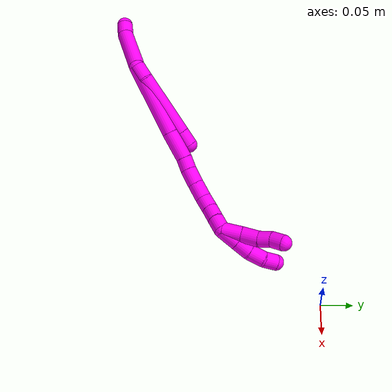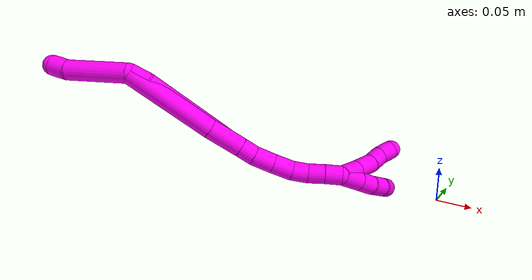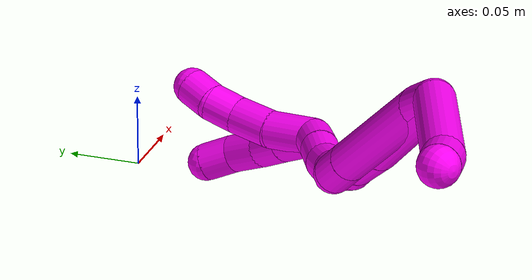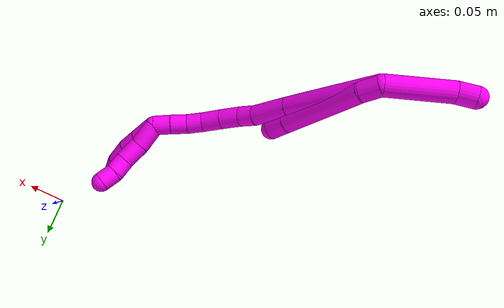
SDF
<sdf version="1.7">
 <world name="default">
  <model name="10">
   <static>0</static>
   <link name="10">
    <collision name="collision-cylinder-e_1_2_8">
     <pose>0.006046 -0.000489 -0.010186 3.09361 0.535124 2.96699</pose>
     <geometry><cylinder><radius>0.0125</radius><length>0.023711</length></cylinder></geometry>
     <surface>
      <friction><ode><mu>1.16</mu><mu2>1.16</mu2><slip1>0</slip1><slip2>0</slip2></ode></friction>
      <contact><ode><kp>1e+06</kp><kd>1</kd><max_vel>0</max_vel><min_depth>0.001</min_depth></ode></contact>
     </surface>
    </collision>
    <visual name="visual-cylinder-e_1_2_8">
     <pose>0.006046 -0.000489 -0.010186 3.09361 0.535124 2.96699</pose>
     <geometry><cylinder><radius>0.0125</radius><length>0.023711</length></cylinder></geometry>
     <material><ambient>1 0 0.964706 1</ambient></material>
    </visual>
    <collision name="collision-cylinder-e_2_8_9">
     <pose>0.041257 -0.011246 -0.060897 2.89344 0.609156 2.38623</pose>
     <geometry><cylinder><radius>0.0125</radius><length>0.101946</length></cylinder></geometry>
     <surface>
      <friction><ode><mu>1.16</mu><mu2>1.16</mu2><slip1>0</slip1><slip2>0</slip2></ode></friction>
      <contact><ode><kp>1e+06</kp><kd>1</kd><max_vel>0</max_vel><min_depth>0.001</min_depth></ode></contact>
     </surface>
    </collision>
    <visual name="visual-cylinder-e_2_8_9">
     <pose>0.041257 -0.011246 -0.060897 2.89344 0.609156 2.38623</pose>
     <geometry><cylinder><radius>0.0125</radius><length>0.101946</length></cylinder></geometry>
     <material><ambient>1 0 0.964706 1</ambient></material>
    </visual>
    <collision name="collision-cylinder-e_3_9_6">
     <pose>0.077435 -0.024067 -0.111036 2.882 0.613987 2.3604</pose>
     <geometry><cylinder><radius>0.0125</radius><length>0.024343</length></cylinder></geometry>
     <surface>
      <friction><ode><mu>1.16</mu><mu2>1.16</mu2><slip1>0</slip1><slip2>0</slip2></ode></friction>
      <contact><ode><kp>1e+06</kp><kd>1</kd><max_vel>0</max_vel><min_depth>0.001</min_depth></ode></contact>
     </surface>
    </collision>
    <visual name="visual-cylinder-e_3_9_6">
     <pose>0.077435 -0.024067 -0.111036 2.882 0.613987 2.3604</pose>
     <geometry><cylinder><radius>0.0125</radius><length>0.024343</length></cylinder></geometry>
     <material><ambient>1 0 0.964706 1</ambient></material>
    </visual>
    <collision name="collision-cylinder-e_1_2_10">
     <pose>-0.011165 -0.021345 0.030967 0.603503 -0.288562 -0.090384</pose>
     <geometry><cylinder><radius>0.0125</radius><length>0.078466</length></cylinder></geometry>
     <surface>
      <friction><ode><mu>1.16</mu><mu2>1.16</mu2><slip1>0</slip1><slip2>0</slip2></ode></friction>
      <contact><ode><kp>1e+06</kp><kd>1</kd><max_vel>0</max_vel><min_depth>0.001</min_depth></ode></contact>
     </surface>
    </collision>
    <visual name="visual-cylinder-e_1_2_10">
     <pose>-0.011165 -0.021345 0.030967 0.603503 -0.288562 -0.090384</pose>
     <geometry><cylinder><radius>0.0125</radius><length>0.078466</length></cylinder></geometry>
     <material><ambient>1 0 0.964706 1</ambient></material>
    </visual>
    <collision name="collision-cylinder-e_2_10_5">
     <pose>-0.027816 -0.048617 0.069055 0.694081 -0.534679 -0.19748</pose>
     <geometry><cylinder><radius>0.0125</radius><length>0.021534</length></cylinder></geometry>
     <surface>
      <friction><ode><mu>1.16</mu><mu2>1.16</mu2><slip1>0</slip1><slip2>0</slip2></ode></friction>
      <contact><ode><kp>1e+06</kp><kd>1</kd><max_vel>0</max_vel><min_depth>0.001</min_depth></ode></contact>
     </surface>
    </collision>
    <visual name="visual-cylinder-e_2_10_5">
     <pose>-0.027816 -0.048617 0.069055 0.694081 -0.534679 -0.19748</pose>
     <geometry><cylinder><radius>0.0125</radius><length>0.021534</length></cylinder></geometry>
     <material><ambient>1 0 0.964706 1</ambient></material>
    </visual>
    <collision name="collision-cylinder-e_1_2_11">
     <pose>0.036887 -0.002938 -0.045547 3.07717 0.679716 2.95982</pose>
     <geometry><cylinder><radius>0.0125</radius><length>0.117367</length></cylinder></geometry>
     <surface>
      <friction><ode><mu>1.16</mu><mu2>1.16</mu2><slip1>0</slip1><slip2>0</slip2></ode></friction>
      <contact><ode><kp>1e+06</kp><kd>1</kd><max_vel>0</max_vel><min_depth>0.001</min_depth></ode></contact>
     </surface>
    </collision>
    <visual name="visual-cylinder-e_1_2_11">
     <pose>0.036887 -0.002938 -0.045547 3.07717 0.679716 2.95982</pose>
     <geometry><cylinder><radius>0.0125</radius><length>0.117367</length></cylinder></geometry>
     <material><ambient>1 0 0.964706 1</ambient></material>
    </visual>
    <collision name="collision-cylinder-e_2_11_12">
     <pose>0.087198 -0.006777 -0.109625 3.09304 0.626332 2.9919</pose>
     <geometry><cylinder><radius>0.0125</radius><length>0.045801</length></cylinder></geometry>
     <surface>
      <friction><ode><mu>1.16</mu><mu2>1.16</mu2><slip1>0</slip1><slip2>0</slip2></ode></friction>
      <contact><ode><kp>1e+06</kp><kd>1</kd><max_vel>0</max_vel><min_depth>0.001</min_depth></ode></contact>
     </surface>
    </collision>
    <visual name="visual-cylinder-e_2_11_12">
     <pose>0.087198 -0.006777 -0.109625 3.09304 0.626332 2.9919</pose>
     <geometry><cylinder><radius>0.0125</radius><length>0.045801</length></cylinder></geometry>
     <material><ambient>1 0 0.964706 1</ambient></material>
    </visual>
    <collision name="collision-cylinder-e_3_12_13">
     <pose>0.107128 -0.00668 -0.135815 -3.01197 0.70013 -2.78974</pose>
     <geometry><cylinder><radius>0.0125</radius><length>0.020198</length></cylinder></geometry>
     <surface>
      <friction><ode><mu>1.16</mu><mu2>1.16</mu2><slip1>0</slip1><slip2>0</slip2></ode></friction>
      <contact><ode><kp>1e+06</kp><kd>1</kd><max_vel>0</max_vel><min_depth>0.001</min_depth></ode></contact>
     </surface>
    </collision>
    <visual name="visual-cylinder-e_3_12_13">
     <pose>0.107128 -0.00668 -0.135815 -3.01197 0.70013 -2.78974</pose>
     <geometry><cylinder><radius>0.0125</radius><length>0.020198</length></cylinder></geometry>
     <material><ambient>1 0 0.964706 1</ambient></material>
    </visual>
    <collision name="collision-cylinder-e_4_13_14">
     <pose>0.120365 -0.003762 -0.1545 -2.96923 0.541395 -2.53797</pose>
     <geometry><cylinder><radius>0.0125</radius><length>0.026119</length></cylinder></geometry>
     <surface>
      <friction><ode><mu>1.16</mu><mu2>1.16</mu2><slip1>0</slip1><slip2>0</slip2></ode></friction>
      <contact><ode><kp>1e+06</kp><kd>1</kd><max_vel>0</max_vel><min_depth>0.001</min_depth></ode></contact>
     </surface>
    </collision>
    <visual name="visual-cylinder-e_4_13_14">
     <pose>0.120365 -0.003762 -0.1545 -2.96923 0.541395 -2.53797</pose>
     <geometry><cylinder><radius>0.0125</radius><length>0.026119</length></cylinder></geometry>
     <material><ambient>1 0 0.964706 1</ambient></material>
    </visual>
    <collision name="collision-cylinder-e_5_14_15">
     <pose>0.133344 0.000115 -0.176676 -2.96786 0.504379 -2.48976</pose>
     <geometry><cylinder><radius>0.0125</radius><length>0.025862</length></cylinder></geometry>
     <surface>
      <friction><ode><mu>1.16</mu><mu2>1.16</mu2><slip1>0</slip1><slip2>0</slip2></ode></friction>
      <contact><ode><kp>1e+06</kp><kd>1</kd><max_vel>0</max_vel><min_depth>0.001</min_depth></ode></contact>
     </surface>
    </collision>
    <visual name="visual-cylinder-e_5_14_15">
     <pose>0.133344 0.000115 -0.176676 -2.96786 0.504379 -2.48976</pose>
     <geometry><cylinder><radius>0.0125</radius><length>0.025862</length></cylinder></geometry>
     <material><ambient>1 0 0.964706 1</ambient></material>
    </visual>
    <collision name="collision-cylinder-e_6_15_16">
     <pose>0.143166 0.005185 -0.197315 -2.82452 0.343552 -1.65238</pose>
     <geometry><cylinder><radius>0.0125</radius><length>0.021211</length></cylinder></geometry>
     <surface>
      <friction><ode><mu>1.16</mu><mu2>1.16</mu2><slip1>0</slip1><slip2>0</slip2></ode></friction>
      <contact><ode><kp>1e+06</kp><kd>1</kd><max_vel>0</max_vel><min_depth>0.001</min_depth></ode></contact>
     </surface>
    </collision>
    <visual name="visual-cylinder-e_6_15_16">
     <pose>0.143166 0.005185 -0.197315 -2.82452 0.343552 -1.65238</pose>
     <geometry><cylinder><radius>0.0125</radius><length>0.021211</length></cylinder></geometry>
     <material><ambient>1 0 0.964706 1</ambient></material>
    </visual>
    <collision name="collision-cylinder-e_7_16_17">
     <pose>0.14925 0.013216 -0.216122 -2.65606 0.233975 -0.88617</pose>
     <geometry><cylinder><radius>0.0125</radius><length>0.021664</length></cylinder></geometry>
     <surface>
      <friction><ode><mu>1.16</mu><mu2>1.16</mu2><slip1>0</slip1><slip2>0</slip2></ode></friction>
      <contact><ode><kp>1e+06</kp><kd>1</kd><max_vel>0</max_vel><min_depth>0.001</min_depth></ode></contact>
     </surface>
    </collision>
    <visual name="visual-cylinder-e_7_16_17">
     <pose>0.14925 0.013216 -0.216122 -2.65606 0.233975 -0.88617</pose>
     <geometry><cylinder><radius>0.0125</radius><length>0.021664</length></cylinder></geometry>
     <material><ambient>1 0 0.964706 1</ambient></material>
    </visual>
    <collision name="collision-cylinder-e_8_17_1">
     <pose>0.154706 0.022491 -0.234975 -2.71284 0.273887 -1.12859</pose>
     <geometry><cylinder><radius>0.0125</radius><length>0.021778</length></cylinder></geometry>
     <surface>
      <friction><ode><mu>1.16</mu><mu2>1.16</mu2><slip1>0</slip1><slip2>0</slip2></ode></friction>
      <contact><ode><kp>1e+06</kp><kd>1</kd><max_vel>0</max_vel><min_depth>0.001</min_depth></ode></contact>
     </surface>
    </collision>
    <visual name="visual-cylinder-e_8_17_1">
     <pose>0.154706 0.022491 -0.234975 -2.71284 0.273887 -1.12859</pose>
     <geometry><cylinder><radius>0.0125</radius><length>0.021778</length></cylinder></geometry>
     <material><ambient>1 0 0.964706 1</ambient></material>
    </visual>
    <collision name="collision-cylinder-e_1_1_18">
     <pose>0.161999 0.02305 -0.258339 2.87351 0.294309 1.66524</pose>
     <geometry><cylinder><radius>0.0125</radius><length>0.029974</length></cylinder></geometry>
     <surface>
      <friction><ode><mu>1.16</mu><mu2>1.16</mu2><slip1>0</slip1><slip2>0</slip2></ode></friction>
      <contact><ode><kp>1e+06</kp><kd>1</kd><max_vel>0</max_vel><min_depth>0.001</min_depth></ode></contact>
     </surface>
    </collision>
    <visual name="visual-cylinder-e_1_1_18">
     <pose>0.161999 0.02305 -0.258339 2.87351 0.294309 1.66524</pose>
     <geometry><cylinder><radius>0.0125</radius><length>0.029974</length></cylinder></geometry>
     <material><ambient>1 0 0.964706 1</ambient></material>
    </visual>
    <collision name="collision-cylinder-e_2_18_19">
     <pose>0.169818 0.016046 -0.283061 2.8554 0.296737 1.60748</pose>
     <geometry><cylinder><radius>0.0125</radius><length>0.023746</length></cylinder></geometry>
     <surface>
      <friction><ode><mu>1.16</mu><mu2>1.16</mu2><slip1>0</slip1><slip2>0</slip2></ode></friction>
      <contact><ode><kp>1e+06</kp><kd>1</kd><max_vel>0</max_vel><min_depth>0.001</min_depth></ode></contact>
     </surface>
    </collision>
    <visual name="visual-cylinder-e_2_18_19">
     <pose>0.169818 0.016046 -0.283061 2.8554 0.296737 1.60748</pose>
     <geometry><cylinder><radius>0.0125</radius><length>0.023746</length></cylinder></geometry>
     <material><ambient>1 0 0.964706 1</ambient></material>
    </visual>
    <collision name="collision-cylinder-e_3_19_20">
     <pose>0.175013 0.007924 -0.30527 2.73177 0.138817 0.645613</pose>
     <geometry><cylinder><radius>0.0125</radius><length>0.024917</length></cylinder></geometry>
     <surface>
      <friction><ode><mu>1.16</mu><mu2>1.16</mu2><slip1>0</slip1><slip2>0</slip2></ode></friction>
      <contact><ode><kp>1e+06</kp><kd>1</kd><max_vel>0</max_vel><min_depth>0.001</min_depth></ode></contact>
     </surface>
    </collision>
    <visual name="visual-cylinder-e_3_19_20">
     <pose>0.175013 0.007924 -0.30527 2.73177 0.138817 0.645613</pose>
     <geometry><cylinder><radius>0.0125</radius><length>0.024917</length></cylinder></geometry>
     <material><ambient>1 0 0.964706 1</ambient></material>
    </visual>
    <collision name="collision-cylinder-e_4_20_4">
     <pose>0.177082 -0.003693 -0.324899 2.46303 0.032286 0.091425</pose>
     <geometry><cylinder><radius>0.0125</radius><length>0.021363</length></cylinder></geometry>
     <surface>
      <friction><ode><mu>1.16</mu><mu2>1.16</mu2><slip1>0</slip1><slip2>0</slip2></ode></friction>
      <contact><ode><kp>1e+06</kp><kd>1</kd><max_vel>0</max_vel><min_depth>0.001</min_depth></ode></contact>
     </surface>
    </collision>
    <visual name="visual-cylinder-e_4_20_4">
     <pose>0.177082 -0.003693 -0.324899 2.46303 0.032286 0.091425</pose>
     <geometry><cylinder><radius>0.0125</radius><length>0.021363</length></cylinder></geometry>
     <material><ambient>1 0 0.964706 1</ambient></material>
    </visual>
    <collision name="collision-cylinder-e_1_1_21">
     <pose>0.154588 0.022116 -0.259189 2.8297 -0.196058 -1.11793</pose>
     <geometry><cylinder><radius>0.0125</radius><length>0.031451</length></cylinder></geometry>
     <surface>
      <friction><ode><mu>1.16</mu><mu2>1.16</mu2><slip1>0</slip1><slip2>0</slip2></ode></friction>
      <contact><ode><kp>1e+06</kp><kd>1</kd><max_vel>0</max_vel><min_depth>0.001</min_depth></ode></contact>
     </surface>
    </collision>
    <visual name="visual-cylinder-e_1_1_21">
     <pose>0.154588 0.022116 -0.259189 2.8297 -0.196058 -1.11793</pose>
     <geometry><cylinder><radius>0.0125</radius><length>0.031451</length></cylinder></geometry>
     <material><ambient>1 0 0.964706 1</ambient></material>
    </visual>
    <collision name="collision-cylinder-e_2_21_22">
     <pose>0.14815 0.015975 -0.287227 3.03658 -0.246118 -2.33799</pose>
     <geometry><cylinder><radius>0.0125</radius><length>0.027699</length></cylinder></geometry>
     <surface>
      <friction><ode><mu>1.16</mu><mu2>1.16</mu2><slip1>0</slip1><slip2>0</slip2></ode></friction>
      <contact><ode><kp>1e+06</kp><kd>1</kd><max_vel>0</max_vel><min_depth>0.001</min_depth></ode></contact>
     </surface>
    </collision>
    <visual name="visual-cylinder-e_2_21_22">
     <pose>0.14815 0.015975 -0.287227 3.03658 -0.246118 -2.33799</pose>
     <geometry><cylinder><radius>0.0125</radius><length>0.027699</length></cylinder></geometry>
     <material><ambient>1 0 0.964706 1</ambient></material>
    </visual>
    <collision name="collision-cylinder-e_3_22_23">
     <pose>0.140113 0.013211 -0.309701 2.99391 -0.468448 -2.54032</pose>
     <geometry><cylinder><radius>0.0125</radius><length>0.020656</length></cylinder></geometry>
     <surface>
      <friction><ode><mu>1.16</mu><mu2>1.16</mu2><slip1>0</slip1><slip2>0</slip2></ode></friction>
      <contact><ode><kp>1e+06</kp><kd>1</kd><max_vel>0</max_vel><min_depth>0.001</min_depth></ode></contact>
     </surface>
    </collision>
    <visual name="visual-cylinder-e_3_22_23">
     <pose>0.140113 0.013211 -0.309701 2.99391 -0.468448 -2.54032</pose>
     <geometry><cylinder><radius>0.0125</radius><length>0.020656</length></cylinder></geometry>
     <material><ambient>1 0 0.964706 1</ambient></material>
    </visual>
    <collision name="collision-cylinder-e_4_23_3">
     <pose>0.132414 0.012947 -0.328383 -3.02794 -0.305381 2.43345</pose>
     <geometry><cylinder><radius>0.0125</radius><length>0.020193</length></cylinder></geometry>
     <surface>
      <friction><ode><mu>1.16</mu><mu2>1.16</mu2><slip1>0</slip1><slip2>0</slip2></ode></friction>
      <contact><ode><kp>1e+06</kp><kd>1</kd><max_vel>0</max_vel><min_depth>0.001</min_depth></ode></contact>
     </surface>
    </collision>
    <visual name="visual-cylinder-e_4_23_3">
     <pose>0.132414 0.012947 -0.328383 -3.02794 -0.305381 2.43345</pose>
     <geometry><cylinder><radius>0.0125</radius><length>0.020193</length></cylinder></geometry>
     <material><ambient>1 0 0.964706 1</ambient></material>
    </visual>
    <collision name="collision-sphere-3">
     <pose>0.129378 0.014039 -0.337951 0 -0 0</pose>
     <geometry><sphere><radius>0.0125</radius></sphere></geometry>
     <surface>
      <friction><ode><mu>1.16</mu><mu2>1.16</mu2><slip1>0</slip1><slip2>0</slip2></ode></friction>
      <contact><ode><kp>1e+06</kp><kd>1</kd><max_vel>0</max_vel><min_depth>0.001</min_depth></ode></contact>
     </surface>
    </collision>
    <visual name="visual-sphere-3">
     <pose>0.129378 0.014039 -0.337951 0 -0 0</pose>
     <geometry><sphere><radius>0.0125</radius></sphere></geometry>
     <material><ambient>1 0 0.964706 1</ambient></material>
    </visual>
    <collision name="collision-sphere-23">
     <pose>0.135449 0.011855 -0.318816 0 -0 0</pose>
     <geometry><sphere><radius>0.0125</radius></sphere></geometry>
     <surface>
      <friction><ode><mu>1.16</mu><mu2>1.16</mu2><slip1>0</slip1><slip2>0</slip2></ode></friction>
      <contact><ode><kp>1e+06</kp><kd>1</kd><max_vel>0</max_vel><min_depth>0.001</min_depth></ode></contact>
     </surface>
    </collision>
    <visual name="visual-sphere-23">
     <pose>0.135449 0.011855 -0.318816 0 -0 0</pose>
     <geometry><sphere><radius>0.0125</radius></sphere></geometry>
     <material><ambient>1 0 0.964706 1</ambient></material>
    </visual>
    <collision name="collision-sphere-22">
     <pose>0.144776 0.014567 -0.300586 0 -0 0</pose>
     <geometry><sphere><radius>0.0125</radius></sphere></geometry>
     <surface>
      <friction><ode><mu>1.16</mu><mu2>1.16</mu2><slip1>0</slip1><slip2>0</slip2></ode></friction>
      <contact><ode><kp>1e+06</kp><kd>1</kd><max_vel>0</max_vel><min_depth>0.001</min_depth></ode></contact>
     </surface>
    </collision>
    <visual name="visual-sphere-22">
     <pose>0.144776 0.014567 -0.300586 0 -0 0</pose>
     <geometry><sphere><radius>0.0125</radius></sphere></geometry>
     <material><ambient>1 0 0.964706 1</ambient></material>
    </visual>
    <collision name="collision-sphere-21">
     <pose>0.151524 0.017383 -0.273869 0 -0 0</pose>
     <geometry><sphere><radius>0.0125</radius></sphere></geometry>
     <surface>
      <friction><ode><mu>1.16</mu><mu2>1.16</mu2><slip1>0</slip1><slip2>0</slip2></ode></friction>
      <contact><ode><kp>1e+06</kp><kd>1</kd><max_vel>0</max_vel><min_depth>0.001</min_depth></ode></contact>
     </surface>
    </collision>
    <visual name="visual-sphere-21">
     <pose>0.151524 0.017383 -0.273869 0 -0 0</pose>
     <geometry><sphere><radius>0.0125</radius></sphere></geometry>
     <material><ambient>1 0 0.964706 1</ambient></material>
    </visual>
    <collision name="collision-sphere-4">
     <pose>0.177427 -0.010394 -0.33321 0 -0 0</pose>
     <geometry><sphere><radius>0.0125</radius></sphere></geometry>
     <surface>
      <friction><ode><mu>1.16</mu><mu2>1.16</mu2><slip1>0</slip1><slip2>0</slip2></ode></friction>
      <contact><ode><kp>1e+06</kp><kd>1</kd><max_vel>0</max_vel><min_depth>0.001</min_depth></ode></contact>
     </surface>
    </collision>
    <visual name="visual-sphere-4">
     <pose>0.177427 -0.010394 -0.33321 0 -0 0</pose>
     <geometry><sphere><radius>0.0125</radius></sphere></geometry>
     <material><ambient>1 0 0.964706 1</ambient></material>
    </visual>
    <collision name="collision-sphere-20">
     <pose>0.176737 0.003008 -0.316588 0 -0 0</pose>
     <geometry><sphere><radius>0.0125</radius></sphere></geometry>
     <surface>
      <friction><ode><mu>1.16</mu><mu2>1.16</mu2><slip1>0</slip1><slip2>0</slip2></ode></friction>
      <contact><ode><kp>1e+06</kp><kd>1</kd><max_vel>0</max_vel><min_depth>0.001</min_depth></ode></contact>
     </surface>
    </collision>
    <visual name="visual-sphere-20">
     <pose>0.176737 0.003008 -0.316588 0 -0 0</pose>
     <geometry><sphere><radius>0.0125</radius></sphere></geometry>
     <material><ambient>1 0 0.964706 1</ambient></material>
    </visual>
    <collision name="collision-sphere-5">
     <pose>-0.033302 -0.054543 0.076176 0 -0 0</pose>
     <geometry><sphere><radius>0.0125</radius></sphere></geometry>
     <surface>
      <friction><ode><mu>1.16</mu><mu2>1.16</mu2><slip1>0</slip1><slip2>0</slip2></ode></friction>
      <contact><ode><kp>1e+06</kp><kd>1</kd><max_vel>0</max_vel><min_depth>0.001</min_depth></ode></contact>
     </surface>
    </collision>
    <visual name="visual-sphere-5">
     <pose>-0.033302 -0.054543 0.076176 0 -0 0</pose>
     <geometry><sphere><radius>0.0125</radius></sphere></geometry>
     <material><ambient>1 0 0.964706 1</ambient></material>
    </visual>
    <collision name="collision-sphere-10">
     <pose>-0.022329 -0.042691 0.061934 0 -0 0</pose>
     <geometry><sphere><radius>0.0125</radius></sphere></geometry>
     <surface>
      <friction><ode><mu>1.16</mu><mu2>1.16</mu2><slip1>0</slip1><slip2>0</slip2></ode></friction>
      <contact><ode><kp>1e+06</kp><kd>1</kd><max_vel>0</max_vel><min_depth>0.001</min_depth></ode></contact>
     </surface>
    </collision>
    <visual name="visual-sphere-10">
     <pose>-0.022329 -0.042691 0.061934 0 -0 0</pose>
     <geometry><sphere><radius>0.0125</radius></sphere></geometry>
     <material><ambient>1 0 0.964706 1</ambient></material>
    </visual>
    <collision name="collision-sphere-6">
     <pose>0.084447 -0.026621 -0.120651 0 -0 0</pose>
     <geometry><sphere><radius>0.0125</radius></sphere></geometry>
     <surface>
      <friction><ode><mu>1.16</mu><mu2>1.16</mu2><slip1>0</slip1><slip2>0</slip2></ode></friction>
      <contact><ode><kp>1e+06</kp><kd>1</kd><max_vel>0</max_vel><min_depth>0.001</min_depth></ode></contact>
     </surface>
    </collision>
    <visual name="visual-sphere-6">
     <pose>0.084447 -0.026621 -0.120651 0 -0 0</pose>
     <geometry><sphere><radius>0.0125</radius></sphere></geometry>
     <material><ambient>1 0 0.964706 1</ambient></material>
    </visual>
    <collision name="collision-sphere-9">
     <pose>0.070422 -0.021513 -0.101421 0 -0 0</pose>
     <geometry><sphere><radius>0.0125</radius></sphere></geometry>
     <surface>
      <friction><ode><mu>1.16</mu><mu2>1.16</mu2><slip1>0</slip1><slip2>0</slip2></ode></friction>
      <contact><ode><kp>1e+06</kp><kd>1</kd><max_vel>0</max_vel><min_depth>0.001</min_depth></ode></contact>
     </surface>
    </collision>
    <visual name="visual-sphere-9">
     <pose>0.070422 -0.021513 -0.101421 0 -0 0</pose>
     <geometry><sphere><radius>0.0125</radius></sphere></geometry>
     <material><ambient>1 0 0.964706 1</ambient></material>
    </visual>
    <collision name="collision-sphere-2">
     <geometry><sphere><radius>0.0125</radius></sphere></geometry>
     <surface>
      <friction><ode><mu>1.16</mu><mu2>1.16</mu2><slip1>0</slip1><slip2>0</slip2></ode></friction>
      <contact><ode><kp>1e+06</kp><kd>1</kd><max_vel>0</max_vel><min_depth>0.001</min_depth></ode></contact>
     </surface>
    </collision>
    <visual name="visual-sphere-2">
     <geometry><sphere><radius>0.0125</radius></sphere></geometry>
     <material><ambient>1 0 0.964706 1</ambient></material>
    </visual>
    <collision name="collision-sphere-19">
     <pose>0.173289 0.012841 -0.293953 0 -0 0</pose>
     <geometry><sphere><radius>0.0125</radius></sphere></geometry>
     <surface>
      <friction><ode><mu>1.16</mu><mu2>1.16</mu2><slip1>0</slip1><slip2>0</slip2></ode></friction>
      <contact><ode><kp>1e+06</kp><kd>1</kd><max_vel>0</max_vel><min_depth>0.001</min_depth></ode></contact>
     </surface>
    </collision>
    <visual name="visual-sphere-19">
     <pose>0.173289 0.012841 -0.293953 0 -0 0</pose>
     <geometry><sphere><radius>0.0125</radius></sphere></geometry>
     <material><ambient>1 0 0.964706 1</ambient></material>
    </visual>
    <collision name="collision-sphere-8">
     <pose>0.012091 -0.000978 -0.020373 0 -0 0</pose>
     <geometry><sphere><radius>0.0125</radius></sphere></geometry>
     <surface>
      <friction><ode><mu>1.16</mu><mu2>1.16</mu2><slip1>0</slip1><slip2>0</slip2></ode></friction>
      <contact><ode><kp>1e+06</kp><kd>1</kd><max_vel>0</max_vel><min_depth>0.001</min_depth></ode></contact>
     </surface>
    </collision>
    <visual name="visual-sphere-8">
     <pose>0.012091 -0.000978 -0.020373 0 -0 0</pose>
     <geometry><sphere><radius>0.0125</radius></sphere></geometry>
     <material><ambient>1 0 0.964706 1</ambient></material>
    </visual>
    <collision name="collision-sphere-11">
     <pose>0.073774 -0.005877 -0.091093 0 -0 0</pose>
     <geometry><sphere><radius>0.0125</radius></sphere></geometry>
     <surface>
      <friction><ode><mu>1.16</mu><mu2>1.16</mu2><slip1>0</slip1><slip2>0</slip2></ode></friction>
      <contact><ode><kp>1e+06</kp><kd>1</kd><max_vel>0</max_vel><min_depth>0.001</min_depth></ode></contact>
     </surface>
    </collision>
    <visual name="visual-sphere-11">
     <pose>0.073774 -0.005877 -0.091093 0 -0 0</pose>
     <geometry><sphere><radius>0.0125</radius></sphere></geometry>
     <material><ambient>1 0 0.964706 1</ambient></material>
    </visual>
    <collision name="collision-sphere-12">
     <pose>0.100621 -0.007678 -0.128157 0 -0 0</pose>
     <geometry><sphere><radius>0.0125</radius></sphere></geometry>
     <surface>
      <friction><ode><mu>1.16</mu><mu2>1.16</mu2><slip1>0</slip1><slip2>0</slip2></ode></friction>
      <contact><ode><kp>1e+06</kp><kd>1</kd><max_vel>0</max_vel><min_depth>0.001</min_depth></ode></contact>
     </surface>
    </collision>
    <visual name="visual-sphere-12">
     <pose>0.100621 -0.007678 -0.128157 0 -0 0</pose>
     <geometry><sphere><radius>0.0125</radius></sphere></geometry>
     <material><ambient>1 0 0.964706 1</ambient></material>
    </visual>
    <collision name="collision-sphere-13">
     <pose>0.113635 -0.005681 -0.143474 0 -0 0</pose>
     <geometry><sphere><radius>0.0125</radius></sphere></geometry>
     <surface>
      <friction><ode><mu>1.16</mu><mu2>1.16</mu2><slip1>0</slip1><slip2>0</slip2></ode></friction>
      <contact><ode><kp>1e+06</kp><kd>1</kd><max_vel>0</max_vel><min_depth>0.001</min_depth></ode></contact>
     </surface>
    </collision>
    <visual name="visual-sphere-13">
     <pose>0.113635 -0.005681 -0.143474 0 -0 0</pose>
     <geometry><sphere><radius>0.0125</radius></sphere></geometry>
     <material><ambient>1 0 0.964706 1</ambient></material>
    </visual>
    <collision name="collision-sphere-14">
     <pose>0.127095 -0.001842 -0.165526 0 -0 0</pose>
     <geometry><sphere><radius>0.0125</radius></sphere></geometry>
     <surface>
      <friction><ode><mu>1.16</mu><mu2>1.16</mu2><slip1>0</slip1><slip2>0</slip2></ode></friction>
      <contact><ode><kp>1e+06</kp><kd>1</kd><max_vel>0</max_vel><min_depth>0.001</min_depth></ode></contact>
     </surface>
    </collision>
    <visual name="visual-sphere-14">
     <pose>0.127095 -0.001842 -0.165526 0 -0 0</pose>
     <geometry><sphere><radius>0.0125</radius></sphere></geometry>
     <material><ambient>1 0 0.964706 1</ambient></material>
    </visual>
    <collision name="collision-sphere-15">
     <pose>0.139594 0.002072 -0.187827 0 -0 0</pose>
     <geometry><sphere><radius>0.0125</radius></sphere></geometry>
     <surface>
      <friction><ode><mu>1.16</mu><mu2>1.16</mu2><slip1>0</slip1><slip2>0</slip2></ode></friction>
      <contact><ode><kp>1e+06</kp><kd>1</kd><max_vel>0</max_vel><min_depth>0.001</min_depth></ode></contact>
     </surface>
    </collision>
    <visual name="visual-sphere-15">
     <pose>0.139594 0.002072 -0.187827 0 -0 0</pose>
     <geometry><sphere><radius>0.0125</radius></sphere></geometry>
     <material><ambient>1 0 0.964706 1</ambient></material>
    </visual>
    <collision name="collision-sphere-16">
     <pose>0.146738 0.008299 -0.206803 0 -0 0</pose>
     <geometry><sphere><radius>0.0125</radius></sphere></geometry>
     <surface>
      <friction><ode><mu>1.16</mu><mu2>1.16</mu2><slip1>0</slip1><slip2>0</slip2></ode></friction>
      <contact><ode><kp>1e+06</kp><kd>1</kd><max_vel>0</max_vel><min_depth>0.001</min_depth></ode></contact>
     </surface>
    </collision>
    <visual name="visual-sphere-16">
     <pose>0.146738 0.008299 -0.206803 0 -0 0</pose>
     <geometry><sphere><radius>0.0125</radius></sphere></geometry>
     <material><ambient>1 0 0.964706 1</ambient></material>
    </visual>
    <collision name="collision-sphere-17">
     <pose>0.151761 0.018133 -0.225441 0 -0 0</pose>
     <geometry><sphere><radius>0.0125</radius></sphere></geometry>
     <surface>
      <friction><ode><mu>1.16</mu><mu2>1.16</mu2><slip1>0</slip1><slip2>0</slip2></ode></friction>
      <contact><ode><kp>1e+06</kp><kd>1</kd><max_vel>0</max_vel><min_depth>0.001</min_depth></ode></contact>
     </surface>
    </collision>
    <visual name="visual-sphere-17">
     <pose>0.151761 0.018133 -0.225441 0 -0 0</pose>
     <geometry><sphere><radius>0.0125</radius></sphere></geometry>
     <material><ambient>1 0 0.964706 1</ambient></material>
    </visual>
    <collision name="collision-sphere-1">
     <pose>0.157651 0.026849 -0.244509 0 -0 0</pose>
     <geometry><sphere><radius>0.0125</radius></sphere></geometry>
     <surface>
      <friction><ode><mu>1.16</mu><mu2>1.16</mu2><slip1>0</slip1><slip2>0</slip2></ode></friction>
      <contact><ode><kp>1e+06</kp><kd>1</kd><max_vel>0</max_vel><min_depth>0.001</min_depth></ode></contact>
     </surface>
    </collision>
    <visual name="visual-sphere-1">
     <pose>0.157651 0.026849 -0.244509 0 -0 0</pose>
     <geometry><sphere><radius>0.0125</radius></sphere></geometry>
     <material><ambient>1 0 0.964706 1</ambient></material>
    </visual>
    <collision name="collision-sphere-18">
     <pose>0.166346 0.019251 -0.272169 0 -0 0</pose>
     <geometry><sphere><radius>0.0125</radius></sphere></geometry>
     <surface>
      <friction><ode><mu>1.16</mu><mu2>1.16</mu2><slip1>0</slip1><slip2>0</slip2></ode></friction>
      <contact><ode><kp>1e+06</kp><kd>1</kd><max_vel>0</max_vel><min_depth>0.001</min_depth></ode></contact>
     </surface>
    </collision>
    <visual name="visual-sphere-18">
     <pose>0.166346 0.019251 -0.272169 0 -0 0</pose>
     <geometry><sphere><radius>0.0125</radius></sphere></geometry>
     <material><ambient>1 0 0.964706 1</ambient></material>
    </visual>
    <inertial>
     <pose>0.084058 -0.002136 -0.132111 0 -0 0</pose>
     <mass>0.75</mass>
     <inertia>
      <ixx>-5.2e-05</ixx>
      <ixy>0</ixy>
      <ixz>0</ixz>
      <iyy>0.000325</iyy>
      <iyz>0</iyz>
      <izz>-0.000123</izz>
     </inertia>
    </inertial>
   </link>
   <pose>-0.29942 -0.29374 0.212367 1.4434 1.00601 -0.677696</pose>
  </model>
 </world>
</sdf>
